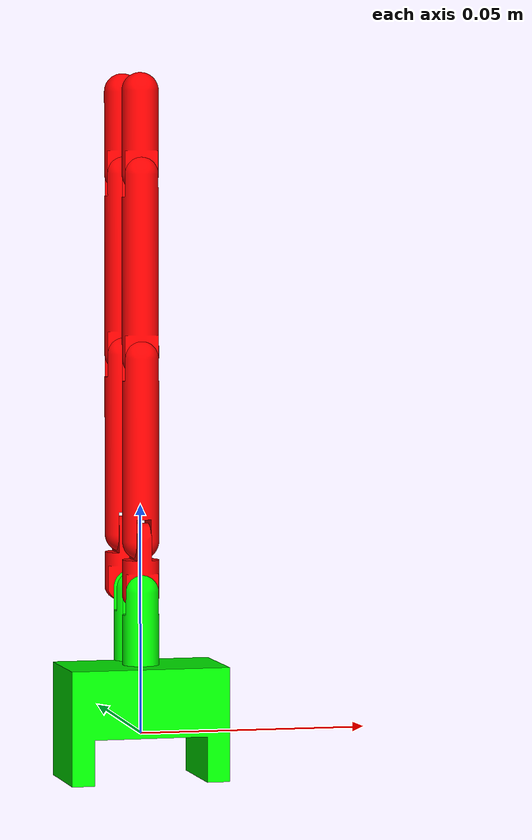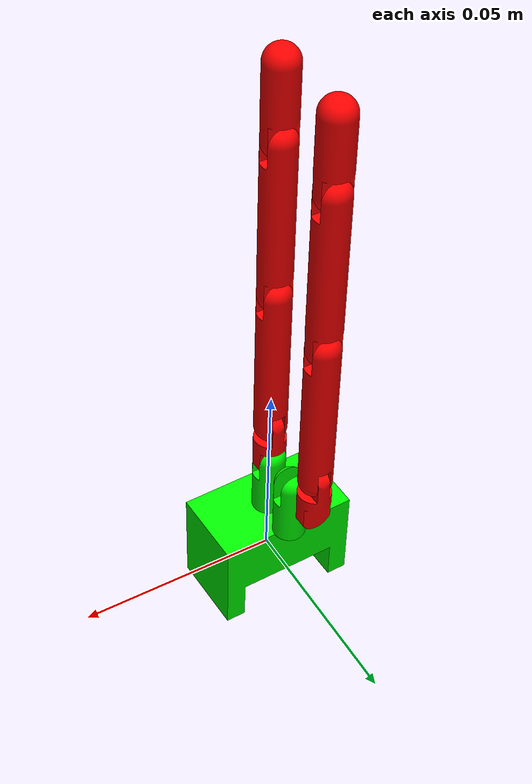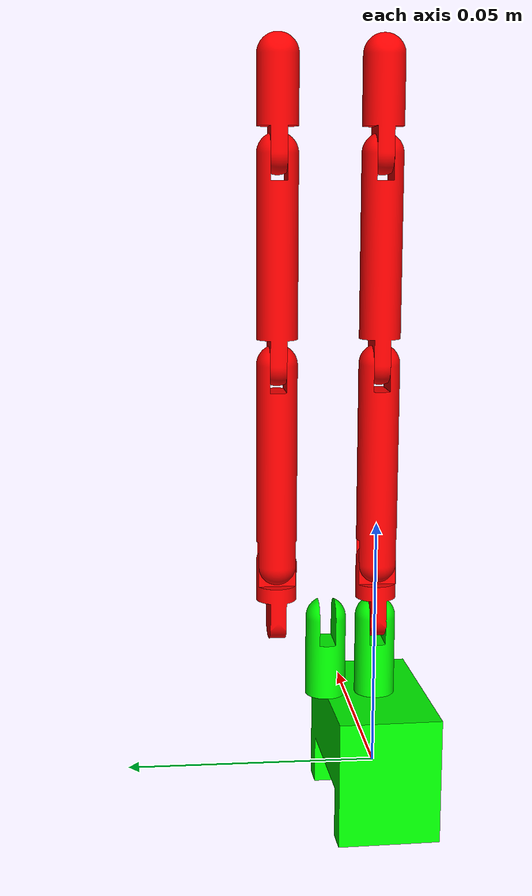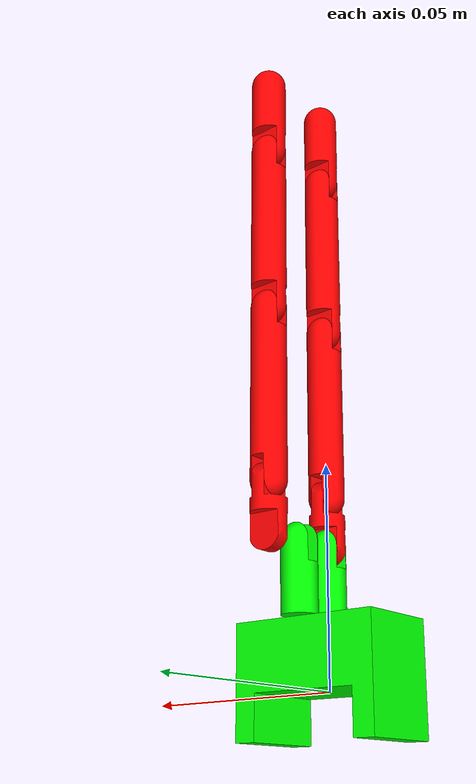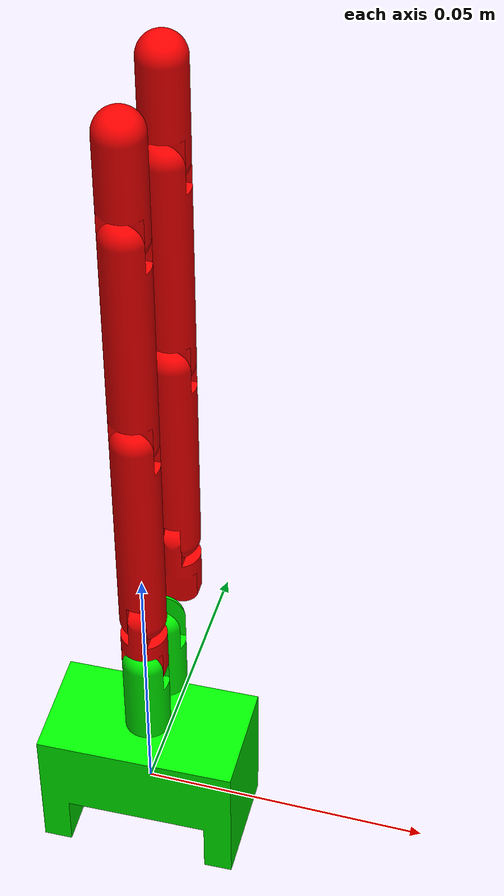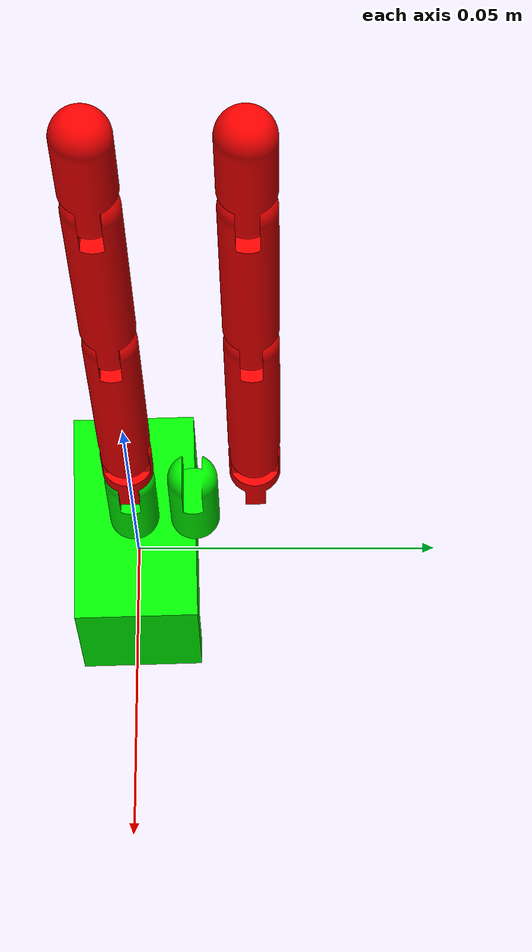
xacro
<?xml version="1.0"?>

<robot xmlns:xacro="http://www.ros.org/wiki/xacro" name="openAIgymHumanoid">

  <xacro:arg name="prefix" default="index"/>
  <xacro:property name="prefix" value="$(arg prefix)" />

  <link name="${prefix}_openAIgymHumanoid_base">
    <visual>
      <origin xyz="0 0 0.0" rpy="0 0 1.6" />
      <geometry>
        <mesh filename="package://ros2_galactic_urdf_finger/openAIgymHumanoid_motor_base.dae"/>
      </geometry>
      <material name="green">
        <color rgba="0 1 0 1" />
      </material>
    </visual>
    <collision>
      <geometry>
        <mesh filename="package://ros2_galactic_urdf_finger/openAIgymHumanoid_motor_base.dae"/>
      </geometry>
    </collision>
    <inertial>
      <mass value="0.01"/>
      <inertia ixx="0.4" ixy="0.0" ixz="0.0" iyy="0.4" iyz="0.0" izz="0.2"/>
    </inertial>
  </link>

  <link name="${prefix}_metacarpals">
    <visual>
      <origin xyz="0 0 0.0" rpy="0 0 0" />
      <geometry>
        <mesh filename="package://ros2_galactic_urdf_finger/thumb_metacarpal_joint.dae"/>
      </geometry>
      <material name="green">
        <color rgba="0 1 0 1" />
      </material>
    </visual>
    <collision>
      <geometry>
        <mesh filename="package://ros2_galactic_urdf_finger/thumb_metacarpal_joint.dae"/>
      </geometry>
    </collision>
    <inertial>
      <mass value="0.01"/>
      <inertia ixx="0.4" ixy="0.0" ixz="0.0" iyy="0.4" iyz="0.0" izz="0.2"/>
    </inertial>
  </link>

  <link name="${prefix}_metacarpals_2">
    <visual>
      <origin xyz="0 0 -0.004" rpy="0 0 1.6" />
      <geometry>
        <mesh filename="package://ros2_galactic_urdf_finger/metacarpals_joint.dae"/>
      </geometry>
      <material name="red">
        <color rgba="1 0 0 1" />
      </material>
    </visual>
    <collision>
      <geometry>
        <mesh filename="package://ros2_galactic_urdf_finger/metacarpals_joint.dae"/>
      </geometry>
    </collision>
    <inertial>
      <mass value="0.01"/>
      <inertia ixx="0.4" ixy="0.0" ixz="0.0" iyy="0.4" iyz="0.0" izz="0.2"/>
    </inertial>
  </link>

  <link name="${prefix}_proximal">
    <visual>
      <origin xyz="0 0 -0.004" rpy="0 0 0" />
      <geometry>
        <mesh filename="package://ros2_galactic_urdf_finger/proximal.dae"/>
      </geometry>
      <material name="red">
        <color rgba="1 0 0 1" />
      </material>
    </visual>
    <collision>
      <geometry>
        <mesh filename="package://ros2_galactic_urdf_finger/proximal.dae"/>
      </geometry>
    </collision>
    <inertial>
      <mass value="0.01"/>
      <inertia ixx="0.4" ixy="0.0" ixz="0.0" iyy="0.4" iyz="0.0" izz="0.2"/>
    </inertial>
  </link>

  <link name="${prefix}_intermediate">
    <visual>
      <origin xyz="0 0 -0.004" rpy="0 0 0" />
      <geometry>
        <mesh filename="package://ros2_galactic_urdf_finger/intermediate.dae"/>
      </geometry>
      <material name="red">
        <color rgba="1 0 0 1" />
      </material>
    </visual>
    <collision>
      <geometry>
        <mesh filename="package://ros2_galactic_urdf_finger/intermediate.dae"/>
      </geometry>
    </collision>
    <inertial>
      <mass value="0.01"/>
      <inertia ixx="0.4" ixy="0.0" ixz="0.0" iyy="0.4" iyz="0.0" izz="0.2"/>
    </inertial>
  </link>

  <link name="${prefix}_distal">
    <visual>
      <origin xyz="0 0 -0.004" rpy="0 0 0" />
      <geometry>
        <mesh filename="package://ros2_galactic_urdf_finger/distal.dae"/>
      </geometry>
      <material name="red">
        <color rgba="1 0 0 1" />
      </material>
    </visual>
    <collision>
      <geometry>
        <mesh filename="package://ros2_galactic_urdf_finger/distal.dae"/>
      </geometry>
    </collision>
    <inertial>
      <mass value="0.01"/>
      <inertia ixx="0.4" ixy="0.0" ixz="0.0" iyy="0.4" iyz="0.0" izz="0.2"/>
    </inertial>
  </link>

  <link name="${prefix}_metacarpals_l">
    <visual>
      <origin xyz="0 0 0.0" rpy="0 0 0" />
      <geometry>
        <mesh filename="package://ros2_galactic_urdf_finger/thumb_metacarpal_joint.dae"/>
      </geometry>
      <material name="green">
        <color rgba="0 1 0 1" />
      </material>
    </visual>
    <collision>
      <geometry>
        <mesh filename="package://ros2_galactic_urdf_finger/thumb_metacarpal_joint.dae"/>
      </geometry>
    </collision>
    <inertial>
      <mass value="0.01"/>
      <inertia ixx="0.4" ixy="0.0" ixz="0.0" iyy="0.4" iyz="0.0" izz="0.2"/>
    </inertial>
  </link>

  <link name="${prefix}_metacarpals_2_l">
    <visual>
      <origin xyz="0 0 -0.004" rpy="0 0 1.6" />
      <geometry>
        <mesh filename="package://ros2_galactic_urdf_finger/metacarpals_joint.dae"/>
      </geometry>
      <material name="red">
        <color rgba="1 0 0 1" />
      </material>
    </visual>
    <collision>
      <geometry>
        <mesh filename="package://ros2_galactic_urdf_finger/metacarpals_joint.dae"/>
      </geometry>
    </collision>
    <inertial>
      <mass value="0.01"/>
      <inertia ixx="0.4" ixy="0.0" ixz="0.0" iyy="0.4" iyz="0.0" izz="0.2"/>
    </inertial>
  </link>

  <link name="${prefix}_proximal_l">
    <visual>
      <origin xyz="0 0 -0.004" rpy="0 0 0" />
      <geometry>
        <mesh filename="package://ros2_galactic_urdf_finger/proximal.dae"/>
      </geometry>
      <material name="red">
        <color rgba="1 0 0 1" />
      </material>
    </visual>
    <collision>
      <geometry>
        <mesh filename="package://ros2_galactic_urdf_finger/proximal.dae"/>
      </geometry>
    </collision>
    <inertial>
      <mass value="0.01"/>
      <inertia ixx="0.4" ixy="0.0" ixz="0.0" iyy="0.4" iyz="0.0" izz="0.2"/>
    </inertial>
  </link>

  <link name="${prefix}_intermediate_l">
    <visual>
      <origin xyz="0 0 -0.004" rpy="0 0 0" />
      <geometry>
        <mesh filename="package://ros2_galactic_urdf_finger/intermediate.dae"/>
      </geometry>
      <material name="red">
        <color rgba="1 0 0 1" />
      </material>
    </visual>
    <collision>
      <geometry>
        <mesh filename="package://ros2_galactic_urdf_finger/intermediate.dae"/>
      </geometry>
    </collision>
    <inertial>
      <mass value="0.01"/>
      <inertia ixx="0.4" ixy="0.0" ixz="0.0" iyy="0.4" iyz="0.0" izz="0.2"/>
    </inertial>
  </link>

  <link name="${prefix}_distal_l">
    <visual>
      <origin xyz="0 0 -0.004" rpy="0 0 0" />
      <geometry>
        <mesh filename="package://ros2_galactic_urdf_finger/distal.dae"/>
      </geometry>
      <material name="red">
        <color rgba="1 0 0 1" />
      </material>
    </visual>
    <collision>
      <geometry>
        <mesh filename="package://ros2_galactic_urdf_finger/distal.dae"/>
      </geometry>
    </collision>
    <inertial>
      <mass value="0.01"/>
      <inertia ixx="0.4" ixy="0.0" ixz="0.0" iyy="0.4" iyz="0.0" izz="0.2"/>
    </inertial>
  </link>

  <joint name="${prefix}_openAIgymHumanoid_base_joint" type="fixed">
    <origin xyz="0 0 0.015" rpy="0 0 0"/>
    <parent link="${prefix}_openAIgymHumanoid_base"/>
    <child link="${prefix}_metacarpals"/>
  </joint>

  <joint name="${prefix}_metacarpals_joint" type="revolute">
    <origin xyz="0 0.0 0.016" rpy="0 0 0"/>
    <parent link="${prefix}_metacarpals"/>
    <child link="${prefix}_metacarpals_2"/>
    <axis xyz="0 1 0"/>
    <limit effort="30" velocity="1.0" lower="-1.6" upper="1.6" />
  </joint>

  <joint name="${prefix}_metacarpals_2_joint" type="revolute">
    <origin xyz="0 0 0.011" rpy="0 0 0"/>
    <parent link="${prefix}_metacarpals_2"/>
    <child link="${prefix}_proximal"/>
    <axis xyz="1 0 0"/>
    <limit effort="30" velocity="1.0" lower="-1.6" upper="1.6" />
  </joint>

  <joint name="${prefix}_proximal_joint" type="revolute">
    <origin xyz="0 0 0.04" rpy="0 0 0"/>
    <parent link="${prefix}_proximal"/>
    <child link="${prefix}_intermediate"/>
    <axis xyz="0 1 0"/>
    <limit effort="30" velocity="1.0" lower="-1.6" upper="1.6" />
  </joint>

  <joint name="${prefix}_intermediate_joint" type="revolute">
    <origin xyz="0 0 0.04" rpy="0 0 0"/>
    <parent link="${prefix}_intermediate"/>
    <child link="${prefix}_distal"/>
    <axis xyz="0 1 0"/>
    <limit effort="30" velocity="1.0" lower="-1.6" upper="1.6" />
  </joint>

  <joint name="${prefix}_openAIgymHumanoid_base_joint_l" type="fixed">
    <origin xyz="0 0.01 0.015" rpy="0 0 0"/>
    <parent link="${prefix}_openAIgymHumanoid_base"/>
    <child link="${prefix}_metacarpals_l"/>
  </joint>

  <joint name="${prefix}_metacarpals_joint_l" type="revolute">
    <origin xyz="0 0.01 0.016" rpy="0 0 0"/>
    <parent link="${prefix}_metacarpals_l"/>
    <child link="${prefix}_metacarpals_2_l"/>
    <axis xyz="0 1 0"/>
    <limit effort="30" velocity="1.0" lower="-1.6" upper="1.6" />
  </joint>

  <joint name="${prefix}_metacarpals_2_joint_l" type="revolute">
    <origin xyz="0 0 0.011" rpy="0 0 0"/>
    <parent link="${prefix}_metacarpals_2_l"/>
    <child link="${prefix}_proximal_l"/>
    <axis xyz="1 0 0"/>
    <limit effort="30" velocity="1.0" lower="-1.6" upper="1.6" />
  </joint>

  <joint name="${prefix}_proximal_joint_l" type="revolute">
    <origin xyz="0 0 0.04" rpy="0 0 0"/>
    <parent link="${prefix}_proximal_l"/>
    <child link="${prefix}_intermediate_l"/>
    <axis xyz="0 1 0"/>
    <limit effort="30" velocity="1.0" lower="-1.6" upper="1.6" />
  </joint>

  <joint name="${prefix}_intermediate_joint_l" type="revolute">
    <origin xyz="0 0 0.04" rpy="0 0 0"/>
    <parent link="${prefix}_intermediate_l"/>
    <child link="${prefix}_distal_l"/>
    <axis xyz="0 1 0"/>
    <limit effort="30" velocity="1.0" lower="-1.6" upper="1.6" />
  </joint>

</robot>
